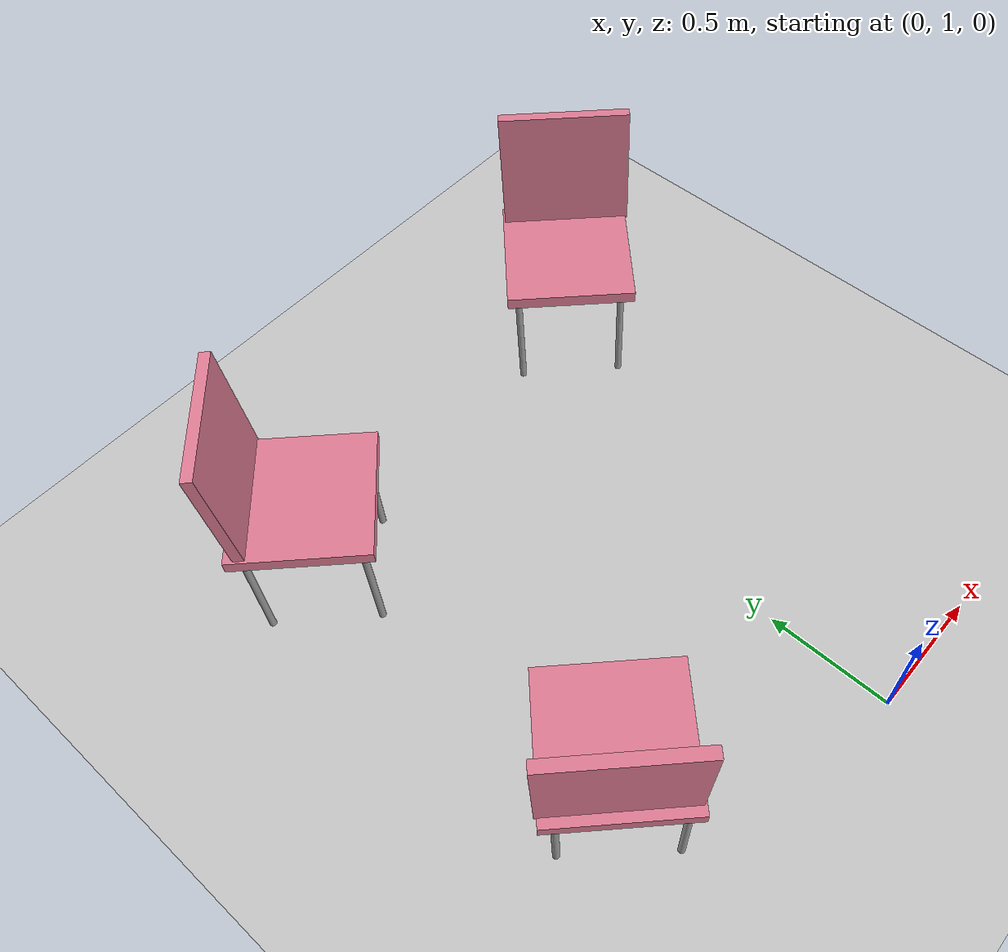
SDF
<sdf version="1.7">
 <world name="default">
  <model name="ground_plane">
   <static>1</static>
   <link name="link">
    <collision name="collision">
     <geometry><plane><normal>0 0 1</normal><size>100 100</size></plane></geometry>
     <surface>
      <contact><collide_bitmask>65535</collide_bitmask></contact>
      <friction><ode><mu>100</mu><mu2>50</mu2></ode></friction>
     </surface>
    </collision>
    <visual name="visual">
     <cast_shadows>0</cast_shadows>
     <geometry><plane><normal>0 0 1</normal><size>100 100</size></plane></geometry>
     <material>
      <script><uri>file://media/materials/scripts/gazebo.material</uri><name>Gazebo/Grey</name></script>
     </material>
    </visual>
   </link>
  </model>
  <model name="my_chair_0">
   <link name="link">
    <inertial>
     <mass>1</mass>
     <inertia>
      <ixx>0.166667</ixx>
      <ixy>0</ixy>
      <ixz>0</ixz>
      <iyy>0.166667</iyy>
      <iyz>0</iyz>
      <izz>0.166667</izz>
     </inertia>
    </inertial>
    <gravity>0</gravity>
    <visual name="visual">
     <geometry><box><size>0.5 0.5 0.05</size></box></geometry>
     <material>
      <script><name>Gazebo/Grey</name><uri>file://media/materials/scripts/gazebo.material</uri></script>
      <shader type="pixel"><normal_map>__default__</normal_map></shader>
      <ambient>0.9 0.5 0.6 1</ambient>
      <diffuse>0.9 0.5 0.6 1</diffuse>
      <specular>0.01 0.01 0.01 1</specular>
      <emissive>0 0 0 1</emissive>
     </material>
     <pose>0 0 0.5 0 -0 0</pose>
    </visual>
    <collision name="collision">
     <pose>0 0 0.5 0 -0 0</pose>
     <geometry><box><size>0.5 0.5 0.05</size></box></geometry>
     <surface>
      <friction>
       <ode><mu>1</mu><mu2>1</mu2><fdir1>0 0 0</fdir1><slip1>0</slip1><slip2>0</slip2></ode>
       <torsional>
        <coefficient>1</coefficient>
        <patch_radius>0</patch_radius>
        <surface_radius>0</surface_radius>
        <use_patch_radius>1</use_patch_radius>
        <ode><slip>0</slip></ode>
       </torsional>
      </friction>
      <bounce><restitution_coefficient>0</restitution_coefficient><threshold>1e+06</threshold></bounce>
      <contact>
       <collide_without_contact>0</collide_without_contact>
       <collide_without_contact_bitmask>1</collide_without_contact_bitmask>
       <collide_bitmask>1</collide_bitmask>
       <ode>
        <soft_cfm>0</soft_cfm>
        <soft_erp>0.2</soft_erp>
        <kp>1e+13</kp>
        <kd>1</kd>
        <max_vel>0.01</max_vel>
        <min_depth>0</min_depth>
       </ode>
       <bullet>
        <split_impulse>1</split_impulse>
        <split_impulse_penetration_threshold>-0.01</split_impulse_penetration_threshold>
        <soft_cfm>0</soft_cfm>
        <soft_erp>0.2</soft_erp>
        <kp>1e+13</kp>
        <kd>1</kd>
       </bullet>
      </contact>
     </surface>
    </collision>
   </link>
   <link name="link_0">
    <inertial>
     <mass>1</mass>
     <inertia><ixx>0.145833</ixx><ixy>0</ixy><ixz>0</ixz><iyy>0.145833</iyy><iyz>0</iyz><izz>0.125</izz></inertia>
    </inertial>
    <pose>-0.200315 -0.184767 -0.272701 -0 -0 -0</pose>
    <gravity>0</gravity>
    <visual name="visual">
     <pose>0 0 0.5 0 -0 0</pose>
     <geometry><cylinder><radius>0.013</radius><length>0.5</length></cylinder></geometry>
     <material>
      <lighting>1</lighting>
      <script><uri>file://media/materials/scripts/gazebo.material</uri><name>Gazebo/Grey</name></script>
      <shader type="pixel"><normal_map>__default__</normal_map></shader>
      <ambient>0.3 0.3 0.3 1</ambient>
      <diffuse>0.7 0.7 0.7 1</diffuse>
      <specular>0.01 0.01 0.01 1</specular>
      <emissive>0 0 0 1</emissive>
     </material>
    </visual>
    <collision name="collision">
     <pose>0 0 0.5 0 -0 0</pose>
     <geometry><cylinder><radius>0.013</radius><length>0.5</length></cylinder></geometry>
     <surface>
      <friction>
       <ode><mu>1</mu><mu2>1</mu2><fdir1>0 0 0</fdir1><slip1>0</slip1><slip2>0</slip2></ode>
       <torsional>
        <coefficient>1</coefficient>
        <patch_radius>0</patch_radius>
        <surface_radius>0</surface_radius>
        <use_patch_radius>1</use_patch_radius>
        <ode><slip>0</slip></ode>
       </torsional>
      </friction>
      <bounce><restitution_coefficient>0</restitution_coefficient><threshold>1e+06</threshold></bounce>
      <contact>
       <collide_without_contact>0</collide_without_contact>
       <collide_without_contact_bitmask>1</collide_without_contact_bitmask>
       <collide_bitmask>1</collide_bitmask>
       <ode>
        <soft_cfm>0</soft_cfm>
        <soft_erp>0.2</soft_erp>
        <kp>1e+13</kp>
        <kd>1</kd>
        <max_vel>0.01</max_vel>
        <min_depth>0</min_depth>
       </ode>
       <bullet>
        <split_impulse>1</split_impulse>
        <split_impulse_penetration_threshold>-0.01</split_impulse_penetration_threshold>
        <soft_cfm>0</soft_cfm>
        <soft_erp>0.2</soft_erp>
        <kp>1e+13</kp>
        <kd>1</kd>
       </bullet>
      </contact>
     </surface>
    </collision>
   </link>
   <link name="link_0_clone">
    <inertial>
     <mass>1</mass>
     <inertia><ixx>0.145833</ixx><ixy>0</ixy><ixz>0</ixz><iyy>0.145833</iyy><iyz>0</iyz><izz>0.125</izz></inertia>
    </inertial>
    <pose>-0.198839 0.194466 -0.272701 -0 -0 -0</pose>
    <gravity>0</gravity>
    <visual name="visual">
     <pose>0 0 0.5 0 -0 0</pose>
     <geometry><cylinder><radius>0.013</radius><length>0.5</length></cylinder></geometry>
     <material>
      <lighting>1</lighting>
      <script><uri>file://media/materials/scripts/gazebo.material</uri><name>Gazebo/Grey</name></script>
      <shader type="pixel"><normal_map>__default__</normal_map></shader>
      <ambient>0.3 0.3 0.3 1</ambient>
      <diffuse>0.7 0.7 0.7 1</diffuse>
      <specular>0.01 0.01 0.01 1</specular>
      <emissive>0 0 0 1</emissive>
     </material>
    </visual>
    <collision name="collision">
     <pose>0 0 0.5 0 -0 0</pose>
     <geometry><cylinder><radius>0.013</radius><length>0.5</length></cylinder></geometry>
     <surface>
      <friction>
       <ode><mu>1</mu><mu2>1</mu2><fdir1>0 0 0</fdir1><slip1>0</slip1><slip2>0</slip2></ode>
       <torsional>
        <coefficient>1</coefficient>
        <patch_radius>0</patch_radius>
        <surface_radius>0</surface_radius>
        <use_patch_radius>1</use_patch_radius>
        <ode><slip>0</slip></ode>
       </torsional>
      </friction>
      <bounce><restitution_coefficient>0</restitution_coefficient><threshold>1e+06</threshold></bounce>
      <contact>
       <collide_without_contact>0</collide_without_contact>
       <collide_without_contact_bitmask>1</collide_without_contact_bitmask>
       <collide_bitmask>1</collide_bitmask>
       <ode>
        <soft_cfm>0</soft_cfm>
        <soft_erp>0.2</soft_erp>
        <kp>1e+13</kp>
        <kd>1</kd>
        <max_vel>0.01</max_vel>
        <min_depth>0</min_depth>
       </ode>
       <bullet>
        <split_impulse>1</split_impulse>
        <split_impulse_penetration_threshold>-0.01</split_impulse_penetration_threshold>
        <soft_cfm>0</soft_cfm>
        <soft_erp>0.2</soft_erp>
        <kp>1e+13</kp>
        <kd>1</kd>
       </bullet>
      </contact>
     </surface>
    </collision>
   </link>
   <link name="link_0_clone_0">
    <inertial>
     <mass>1</mass>
     <inertia><ixx>0.145833</ixx><ixy>0</ixy><ixz>0</ixz><iyy>0.145833</iyy><iyz>0</iyz><izz>0.125</izz></inertia>
    </inertial>
    <pose>0.211914 -0.198881 -0.272701 -0 -0 -0</pose>
    <gravity>0</gravity>
    <visual name="visual">
     <pose>0 0 0.5 0 -0 0</pose>
     <geometry><cylinder><radius>0.013</radius><length>0.5</length></cylinder></geometry>
     <material>
      <lighting>1</lighting>
      <script><uri>file://media/materials/scripts/gazebo.material</uri><name>Gazebo/Grey</name></script>
      <shader type="pixel"><normal_map>__default__</normal_map></shader>
      <ambient>0.3 0.3 0.3 1</ambient>
      <diffuse>0.7 0.7 0.7 1</diffuse>
      <specular>0.01 0.01 0.01 1</specular>
      <emissive>0 0 0 1</emissive>
     </material>
    </visual>
    <collision name="collision">
     <pose>0 0 0.5 0 -0 0</pose>
     <geometry><cylinder><radius>0.013</radius><length>0.5</length></cylinder></geometry>
     <surface>
      <friction>
       <ode><mu>1</mu><mu2>1</mu2><fdir1>0 0 0</fdir1><slip1>0</slip1><slip2>0</slip2></ode>
       <torsional>
        <coefficient>1</coefficient>
        <patch_radius>0</patch_radius>
        <surface_radius>0</surface_radius>
        <use_patch_radius>1</use_patch_radius>
        <ode><slip>0</slip></ode>
       </torsional>
      </friction>
      <bounce><restitution_coefficient>0</restitution_coefficient><threshold>1e+06</threshold></bounce>
      <contact>
       <collide_without_contact>0</collide_without_contact>
       <collide_without_contact_bitmask>1</collide_without_contact_bitmask>
       <collide_bitmask>1</collide_bitmask>
       <ode>
        <soft_cfm>0</soft_cfm>
        <soft_erp>0.2</soft_erp>
        <kp>1e+13</kp>
        <kd>1</kd>
        <max_vel>0.01</max_vel>
        <min_depth>0</min_depth>
       </ode>
       <bullet>
        <split_impulse>1</split_impulse>
        <split_impulse_penetration_threshold>-0.01</split_impulse_penetration_threshold>
        <soft_cfm>0</soft_cfm>
        <soft_erp>0.2</soft_erp>
        <kp>1e+13</kp>
        <kd>1</kd>
       </bullet>
      </contact>
     </surface>
    </collision>
   </link>
   <link name="link_0_clone_1">
    <inertial>
     <mass>1</mass>
     <inertia><ixx>0.145833</ixx><ixy>0</ixy><ixz>0</ixz><iyy>0.145833</iyy><iyz>0</iyz><izz>0.125</izz></inertia>
    </inertial>
    <pose>0.207422 0.203987 -0.272701 -0 -0 -0</pose>
    <gravity>0</gravity>
    <visual name="visual">
     <pose>0 0 0.5 0 -0 0</pose>
     <geometry><cylinder><radius>0.013</radius><length>0.5</length></cylinder></geometry>
     <material>
      <lighting>1</lighting>
      <script><uri>file://media/materials/scripts/gazebo.material</uri><name>Gazebo/Grey</name></script>
      <shader type="pixel"><normal_map>__default__</normal_map></shader>
      <ambient>0.3 0.3 0.3 1</ambient>
      <diffuse>0.7 0.7 0.7 1</diffuse>
      <specular>0.01 0.01 0.01 1</specular>
      <emissive>0 0 0 1</emissive>
     </material>
    </visual>
    <collision name="collision">
     <pose>0 0 0.5 0 -0 0</pose>
     <geometry><cylinder><radius>0.013</radius><length>0.5</length></cylinder></geometry>
     <surface>
      <friction>
       <ode><mu>1</mu><mu2>1</mu2><fdir1>0 0 0</fdir1><slip1>0</slip1><slip2>0</slip2></ode>
       <torsional>
        <coefficient>1</coefficient>
        <patch_radius>0</patch_radius>
        <surface_radius>0</surface_radius>
        <use_patch_radius>1</use_patch_radius>
        <ode><slip>0</slip></ode>
       </torsional>
      </friction>
      <bounce><restitution_coefficient>0</restitution_coefficient><threshold>1e+06</threshold></bounce>
      <contact>
       <collide_without_contact>0</collide_without_contact>
       <collide_without_contact_bitmask>1</collide_without_contact_bitmask>
       <collide_bitmask>1</collide_bitmask>
       <ode>
        <soft_cfm>0</soft_cfm>
        <soft_erp>0.2</soft_erp>
        <kp>1e+13</kp>
        <kd>1</kd>
        <max_vel>0.01</max_vel>
        <min_depth>0</min_depth>
       </ode>
       <bullet>
        <split_impulse>1</split_impulse>
        <split_impulse_penetration_threshold>-0.01</split_impulse_penetration_threshold>
        <soft_cfm>0</soft_cfm>
        <soft_erp>0.2</soft_erp>
        <kp>1e+13</kp>
        <kd>1</kd>
       </bullet>
      </contact>
     </surface>
    </collision>
   </link>
   <link name="link_clone">
    <inertial>
     <mass>1</mass>
     <inertia>
      <ixx>0.166667</ixx>
      <ixy>0</ixy>
      <ixz>0</ixz>
      <iyy>0.166667</iyy>
      <iyz>0</iyz>
      <izz>0.166667</izz>
     </inertia>
    </inertial>
    <pose>-0.00806 -0.212496 0.264135 -0 -0 -0</pose>
    <gravity>0</gravity>
    <visual name="visual">
     <geometry><box><size>0.5 0.5 0.04</size></box></geometry>
     <material>
      <script><name>Gazebo/Grey</name><uri>file://media/materials/scripts/gazebo.material</uri></script>
      <shader type="pixel"><normal_map>__default__</normal_map></shader>
      <ambient>0.9 0.5 0.6 1</ambient>
      <diffuse>0.9 0.5 0.6 1</diffuse>
      <specular>0.01 0.01 0.01 1</specular>
      <emissive>0 0 0 1</emissive>
     </material>
     <pose>0 0 0.5 -1.5 0 0</pose>
    </visual>
    <collision name="collision">
     <pose>0 0 0.5 -1.5 0 0</pose>
     <geometry><box><size>0.5 0.5 0.04</size></box></geometry>
     <surface>
      <friction>
       <ode><mu>1</mu><mu2>1</mu2><fdir1>0 0 0</fdir1><slip1>0</slip1><slip2>0</slip2></ode>
       <torsional>
        <coefficient>1</coefficient>
        <patch_radius>0</patch_radius>
        <surface_radius>0</surface_radius>
        <use_patch_radius>1</use_patch_radius>
        <ode><slip>0</slip></ode>
       </torsional>
      </friction>
      <bounce><restitution_coefficient>0</restitution_coefficient><threshold>1e+06</threshold></bounce>
      <contact>
       <collide_without_contact>0</collide_without_contact>
       <collide_without_contact_bitmask>1</collide_without_contact_bitmask>
       <collide_bitmask>1</collide_bitmask>
       <ode>
        <soft_cfm>0</soft_cfm>
        <soft_erp>0.2</soft_erp>
        <kp>1e+13</kp>
        <kd>1</kd>
        <max_vel>0.01</max_vel>
        <min_depth>0</min_depth>
       </ode>
       <bullet>
        <split_impulse>1</split_impulse>
        <split_impulse_penetration_threshold>-0.01</split_impulse_penetration_threshold>
        <soft_cfm>0</soft_cfm>
        <soft_erp>0.2</soft_erp>
        <kp>1e+13</kp>
        <kd>1</kd>
       </bullet>
      </contact>
     </surface>
    </collision>
   </link>
   <static>1</static>
   <pose>-0.880612 1.53753 0 0 0 -0.785298</pose>
  </model>
  <model name="my_chair_1">
   <link name="link">
    <inertial>
     <mass>1</mass>
     <inertia>
      <ixx>0.166667</ixx>
      <ixy>0</ixy>
      <ixz>0</ixz>
      <iyy>0.166667</iyy>
      <iyz>0</iyz>
      <izz>0.166667</izz>
     </inertia>
    </inertial>
    <gravity>0</gravity>
    <visual name="visual">
     <geometry><box><size>0.5 0.5 0.05</size></box></geometry>
     <material>
      <script><name>Gazebo/Grey</name><uri>file://media/materials/scripts/gazebo.material</uri></script>
      <shader type="pixel"><normal_map>__default__</normal_map></shader>
      <ambient>0.9 0.5 0.6 1</ambient>
      <diffuse>0.9 0.5 0.6 1</diffuse>
      <specular>0.01 0.01 0.01 1</specular>
      <emissive>0 0 0 1</emissive>
     </material>
     <pose>0 0 0.5 0 -0 0</pose>
    </visual>
    <collision name="collision">
     <pose>0 0 0.5 0 -0 0</pose>
     <geometry><box><size>0.5 0.5 0.05</size></box></geometry>
     <surface>
      <friction>
       <ode><mu>1</mu><mu2>1</mu2><fdir1>0 0 0</fdir1><slip1>0</slip1><slip2>0</slip2></ode>
       <torsional>
        <coefficient>1</coefficient>
        <patch_radius>0</patch_radius>
        <surface_radius>0</surface_radius>
        <use_patch_radius>1</use_patch_radius>
        <ode><slip>0</slip></ode>
       </torsional>
      </friction>
      <bounce><restitution_coefficient>0</restitution_coefficient><threshold>1e+06</threshold></bounce>
      <contact>
       <collide_without_contact>0</collide_without_contact>
       <collide_without_contact_bitmask>1</collide_without_contact_bitmask>
       <collide_bitmask>1</collide_bitmask>
       <ode>
        <soft_cfm>0</soft_cfm>
        <soft_erp>0.2</soft_erp>
        <kp>1e+13</kp>
        <kd>1</kd>
        <max_vel>0.01</max_vel>
        <min_depth>0</min_depth>
       </ode>
       <bullet>
        <split_impulse>1</split_impulse>
        <split_impulse_penetration_threshold>-0.01</split_impulse_penetration_threshold>
        <soft_cfm>0</soft_cfm>
        <soft_erp>0.2</soft_erp>
        <kp>1e+13</kp>
        <kd>1</kd>
       </bullet>
      </contact>
     </surface>
    </collision>
   </link>
   <link name="link_0">
    <inertial>
     <mass>1</mass>
     <inertia><ixx>0.145833</ixx><ixy>0</ixy><ixz>0</ixz><iyy>0.145833</iyy><iyz>0</iyz><izz>0.125</izz></inertia>
    </inertial>
    <pose>-0.200315 -0.184767 -0.272701 -0 -0 -0</pose>
    <gravity>0</gravity>
    <visual name="visual">
     <pose>0 0 0.5 0 -0 0</pose>
     <geometry><cylinder><radius>0.013</radius><length>0.5</length></cylinder></geometry>
     <material>
      <lighting>1</lighting>
      <script><uri>file://media/materials/scripts/gazebo.material</uri><name>Gazebo/Grey</name></script>
      <shader type="pixel"><normal_map>__default__</normal_map></shader>
      <ambient>0.3 0.3 0.3 1</ambient>
      <diffuse>0.7 0.7 0.7 1</diffuse>
      <specular>0.01 0.01 0.01 1</specular>
      <emissive>0 0 0 1</emissive>
     </material>
    </visual>
    <collision name="collision">
     <pose>0 0 0.5 0 -0 0</pose>
     <geometry><cylinder><radius>0.013</radius><length>0.5</length></cylinder></geometry>
     <surface>
      <friction>
       <ode><mu>1</mu><mu2>1</mu2><fdir1>0 0 0</fdir1><slip1>0</slip1><slip2>0</slip2></ode>
       <torsional>
        <coefficient>1</coefficient>
        <patch_radius>0</patch_radius>
        <surface_radius>0</surface_radius>
        <use_patch_radius>1</use_patch_radius>
        <ode><slip>0</slip></ode>
       </torsional>
      </friction>
      <bounce><restitution_coefficient>0</restitution_coefficient><threshold>1e+06</threshold></bounce>
      <contact>
       <collide_without_contact>0</collide_without_contact>
       <collide_without_contact_bitmask>1</collide_without_contact_bitmask>
       <collide_bitmask>1</collide_bitmask>
       <ode>
        <soft_cfm>0</soft_cfm>
        <soft_erp>0.2</soft_erp>
        <kp>1e+13</kp>
        <kd>1</kd>
        <max_vel>0.01</max_vel>
        <min_depth>0</min_depth>
       </ode>
       <bullet>
        <split_impulse>1</split_impulse>
        <split_impulse_penetration_threshold>-0.01</split_impulse_penetration_threshold>
        <soft_cfm>0</soft_cfm>
        <soft_erp>0.2</soft_erp>
        <kp>1e+13</kp>
        <kd>1</kd>
       </bullet>
      </contact>
     </surface>
    </collision>
   </link>
   <link name="link_0_clone">
    <inertial>
     <mass>1</mass>
     <inertia><ixx>0.145833</ixx><ixy>0</ixy><ixz>0</ixz><iyy>0.145833</iyy><iyz>0</iyz><izz>0.125</izz></inertia>
    </inertial>
    <pose>-0.198839 0.194466 -0.272701 -0 -0 -0</pose>
    <gravity>0</gravity>
    <visual name="visual">
     <pose>0 0 0.5 0 -0 0</pose>
     <geometry><cylinder><radius>0.013</radius><length>0.5</length></cylinder></geometry>
     <material>
      <lighting>1</lighting>
      <script><uri>file://media/materials/scripts/gazebo.material</uri><name>Gazebo/Grey</name></script>
      <shader type="pixel"><normal_map>__default__</normal_map></shader>
      <ambient>0.3 0.3 0.3 1</ambient>
      <diffuse>0.7 0.7 0.7 1</diffuse>
      <specular>0.01 0.01 0.01 1</specular>
      <emissive>0 0 0 1</emissive>
     </material>
    </visual>
    <collision name="collision">
     <pose>0 0 0.5 0 -0 0</pose>
     <geometry><cylinder><radius>0.013</radius><length>0.5</length></cylinder></geometry>
     <surface>
      <friction>
       <ode><mu>1</mu><mu2>1</mu2><fdir1>0 0 0</fdir1><slip1>0</slip1><slip2>0</slip2></ode>
       <torsional>
        <coefficient>1</coefficient>
        <patch_radius>0</patch_radius>
        <surface_radius>0</surface_radius>
        <use_patch_radius>1</use_patch_radius>
        <ode><slip>0</slip></ode>
       </torsional>
      </friction>
      <bounce><restitution_coefficient>0</restitution_coefficient><threshold>1e+06</threshold></bounce>
      <contact>
       <collide_without_contact>0</collide_without_contact>
       <collide_without_contact_bitmask>1</collide_without_contact_bitmask>
       <collide_bitmask>1</collide_bitmask>
       <ode>
        <soft_cfm>0</soft_cfm>
        <soft_erp>0.2</soft_erp>
        <kp>1e+13</kp>
        <kd>1</kd>
        <max_vel>0.01</max_vel>
        <min_depth>0</min_depth>
       </ode>
       <bullet>
        <split_impulse>1</split_impulse>
        <split_impulse_penetration_threshold>-0.01</split_impulse_penetration_threshold>
        <soft_cfm>0</soft_cfm>
        <soft_erp>0.2</soft_erp>
        <kp>1e+13</kp>
        <kd>1</kd>
       </bullet>
      </contact>
     </surface>
    </collision>
   </link>
   <link name="link_0_clone_0">
    <inertial>
     <mass>1</mass>
     <inertia><ixx>0.145833</ixx><ixy>0</ixy><ixz>0</ixz><iyy>0.145833</iyy><iyz>0</iyz><izz>0.125</izz></inertia>
    </inertial>
    <pose>0.211914 -0.198881 -0.272701 -0 -0 -0</pose>
    <gravity>0</gravity>
    <visual name="visual">
     <pose>0 0 0.5 0 -0 0</pose>
     <geometry><cylinder><radius>0.013</radius><length>0.5</length></cylinder></geometry>
     <material>
      <lighting>1</lighting>
      <script><uri>file://media/materials/scripts/gazebo.material</uri><name>Gazebo/Grey</name></script>
      <shader type="pixel"><normal_map>__default__</normal_map></shader>
      <ambient>0.3 0.3 0.3 1</ambient>
      <diffuse>0.7 0.7 0.7 1</diffuse>
      <specular>0.01 0.01 0.01 1</specular>
      <emissive>0 0 0 1</emissive>
     </material>
    </visual>
    <collision name="collision">
     <pose>0 0 0.5 0 -0 0</pose>
     <geometry><cylinder><radius>0.013</radius><length>0.5</length></cylinder></geometry>
     <surface>
      <friction>
       <ode><mu>1</mu><mu2>1</mu2><fdir1>0 0 0</fdir1><slip1>0</slip1><slip2>0</slip2></ode>
       <torsional>
        <coefficient>1</coefficient>
        <patch_radius>0</patch_radius>
        <surface_radius>0</surface_radius>
        <use_patch_radius>1</use_patch_radius>
        <ode><slip>0</slip></ode>
       </torsional>
      </friction>
      <bounce><restitution_coefficient>0</restitution_coefficient><threshold>1e+06</threshold></bounce>
      <contact>
       <collide_without_contact>0</collide_without_contact>
       <collide_without_contact_bitmask>1</collide_without_contact_bitmask>
       <collide_bitmask>1</collide_bitmask>
       <ode>
        <soft_cfm>0</soft_cfm>
        <soft_erp>0.2</soft_erp>
        <kp>1e+13</kp>
        <kd>1</kd>
        <max_vel>0.01</max_vel>
        <min_depth>0</min_depth>
       </ode>
       <bullet>
        <split_impulse>1</split_impulse>
        <split_impulse_penetration_threshold>-0.01</split_impulse_penetration_threshold>
        <soft_cfm>0</soft_cfm>
        <soft_erp>0.2</soft_erp>
        <kp>1e+13</kp>
        <kd>1</kd>
       </bullet>
      </contact>
     </surface>
    </collision>
   </link>
   <link name="link_0_clone_1">
    <inertial>
     <mass>1</mass>
     <inertia><ixx>0.145833</ixx><ixy>0</ixy><ixz>0</ixz><iyy>0.145833</iyy><iyz>0</iyz><izz>0.125</izz></inertia>
    </inertial>
    <pose>0.207422 0.203987 -0.272701 -0 -0 -0</pose>
    <gravity>0</gravity>
    <visual name="visual">
     <pose>0 0 0.5 0 -0 0</pose>
     <geometry><cylinder><radius>0.013</radius><length>0.5</length></cylinder></geometry>
     <material>
      <lighting>1</lighting>
      <script><uri>file://media/materials/scripts/gazebo.material</uri><name>Gazebo/Grey</name></script>
      <shader type="pixel"><normal_map>__default__</normal_map></shader>
      <ambient>0.3 0.3 0.3 1</ambient>
      <diffuse>0.7 0.7 0.7 1</diffuse>
      <specular>0.01 0.01 0.01 1</specular>
      <emissive>0 0 0 1</emissive>
     </material>
    </visual>
    <collision name="collision">
     <pose>0 0 0.5 0 -0 0</pose>
     <geometry><cylinder><radius>0.013</radius><length>0.5</length></cylinder></geometry>
     <surface>
      <friction>
       <ode><mu>1</mu><mu2>1</mu2><fdir1>0 0 0</fdir1><slip1>0</slip1><slip2>0</slip2></ode>
       <torsional>
        <coefficient>1</coefficient>
        <patch_radius>0</patch_radius>
        <surface_radius>0</surface_radius>
        <use_patch_radius>1</use_patch_radius>
        <ode><slip>0</slip></ode>
       </torsional>
      </friction>
      <bounce><restitution_coefficient>0</restitution_coefficient><threshold>1e+06</threshold></bounce>
      <contact>
       <collide_without_contact>0</collide_without_contact>
       <collide_without_contact_bitmask>1</collide_without_contact_bitmask>
       <collide_bitmask>1</collide_bitmask>
       <ode>
        <soft_cfm>0</soft_cfm>
        <soft_erp>0.2</soft_erp>
        <kp>1e+13</kp>
        <kd>1</kd>
        <max_vel>0.01</max_vel>
        <min_depth>0</min_depth>
       </ode>
       <bullet>
        <split_impulse>1</split_impulse>
        <split_impulse_penetration_threshold>-0.01</split_impulse_penetration_threshold>
        <soft_cfm>0</soft_cfm>
        <soft_erp>0.2</soft_erp>
        <kp>1e+13</kp>
        <kd>1</kd>
       </bullet>
      </contact>
     </surface>
    </collision>
   </link>
   <link name="link_clone">
    <inertial>
     <mass>1</mass>
     <inertia>
      <ixx>0.166667</ixx>
      <ixy>0</ixy>
      <ixz>0</ixz>
      <iyy>0.166667</iyy>
      <iyz>0</iyz>
      <izz>0.166667</izz>
     </inertia>
    </inertial>
    <pose>-0.00806 -0.212496 0.264135 -0 -0 -0</pose>
    <gravity>0</gravity>
    <visual name="visual">
     <geometry><box><size>0.5 0.5 0.04</size></box></geometry>
     <material>
      <script><name>Gazebo/Grey</name><uri>file://media/materials/scripts/gazebo.material</uri></script>
      <shader type="pixel"><normal_map>__default__</normal_map></shader>
      <ambient>0.9 0.5 0.6 1</ambient>
      <diffuse>0.9 0.5 0.6 1</diffuse>
      <specular>0.01 0.01 0.01 1</specular>
      <emissive>0 0 0 1</emissive>
     </material>
     <pose>0 0 0.5 -1.5 0 0</pose>
    </visual>
    <collision name="collision">
     <pose>0 0 0.5 -1.5 0 0</pose>
     <geometry><box><size>0.5 0.5 0.04</size></box></geometry>
     <surface>
      <friction>
       <ode><mu>1</mu><mu2>1</mu2><fdir1>0 0 0</fdir1><slip1>0</slip1><slip2>0</slip2></ode>
       <torsional>
        <coefficient>1</coefficient>
        <patch_radius>0</patch_radius>
        <surface_radius>0</surface_radius>
        <use_patch_radius>1</use_patch_radius>
        <ode><slip>0</slip></ode>
       </torsional>
      </friction>
      <bounce><restitution_coefficient>0</restitution_coefficient><threshold>1e+06</threshold></bounce>
      <contact>
       <collide_without_contact>0</collide_without_contact>
       <collide_without_contact_bitmask>1</collide_without_contact_bitmask>
       <collide_bitmask>1</collide_bitmask>
       <ode>
        <soft_cfm>0</soft_cfm>
        <soft_erp>0.2</soft_erp>
        <kp>1e+13</kp>
        <kd>1</kd>
        <max_vel>0.01</max_vel>
        <min_depth>0</min_depth>
       </ode>
       <bullet>
        <split_impulse>1</split_impulse>
        <split_impulse_penetration_threshold>-0.01</split_impulse_penetration_threshold>
        <soft_cfm>0</soft_cfm>
        <soft_erp>0.2</soft_erp>
        <kp>1e+13</kp>
        <kd>1</kd>
       </bullet>
      </contact>
     </surface>
    </collision>
   </link>
   <static>1</static>
   <pose>0.547385 2.97428 0 0 -0 2.35589</pose>
  </model>
  <model name="my_chair_2">
   <link name="link">
    <inertial>
     <mass>1</mass>
     <inertia>
      <ixx>0.166667</ixx>
      <ixy>0</ixy>
      <ixz>0</ixz>
      <iyy>0.166667</iyy>
      <iyz>0</iyz>
      <izz>0.166667</izz>
     </inertia>
    </inertial>
    <gravity>0</gravity>
    <visual name="visual">
     <geometry><box><size>0.5 0.5 0.05</size></box></geometry>
     <material>
      <script><name>Gazebo/Grey</name><uri>file://media/materials/scripts/gazebo.material</uri></script>
      <shader type="pixel"><normal_map>__default__</normal_map></shader>
      <ambient>0.9 0.5 0.6 1</ambient>
      <diffuse>0.9 0.5 0.6 1</diffuse>
      <specular>0.01 0.01 0.01 1</specular>
      <emissive>0 0 0 1</emissive>
     </material>
     <pose>0 0 0.5 0 -0 0</pose>
    </visual>
    <collision name="collision">
     <pose>0 0 0.5 0 -0 0</pose>
     <geometry><box><size>0.5 0.5 0.05</size></box></geometry>
     <surface>
      <friction>
       <ode><mu>1</mu><mu2>1</mu2><fdir1>0 0 0</fdir1><slip1>0</slip1><slip2>0</slip2></ode>
       <torsional>
        <coefficient>1</coefficient>
        <patch_radius>0</patch_radius>
        <surface_radius>0</surface_radius>
        <use_patch_radius>1</use_patch_radius>
        <ode><slip>0</slip></ode>
       </torsional>
      </friction>
      <bounce><restitution_coefficient>0</restitution_coefficient><threshold>1e+06</threshold></bounce>
      <contact>
       <collide_without_contact>0</collide_without_contact>
       <collide_without_contact_bitmask>1</collide_without_contact_bitmask>
       <collide_bitmask>1</collide_bitmask>
       <ode>
        <soft_cfm>0</soft_cfm>
        <soft_erp>0.2</soft_erp>
        <kp>1e+13</kp>
        <kd>1</kd>
        <max_vel>0.01</max_vel>
        <min_depth>0</min_depth>
       </ode>
       <bullet>
        <split_impulse>1</split_impulse>
        <split_impulse_penetration_threshold>-0.01</split_impulse_penetration_threshold>
        <soft_cfm>0</soft_cfm>
        <soft_erp>0.2</soft_erp>
        <kp>1e+13</kp>
        <kd>1</kd>
       </bullet>
      </contact>
     </surface>
    </collision>
   </link>
   <link name="link_0">
    <inertial>
     <mass>1</mass>
     <inertia><ixx>0.145833</ixx><ixy>0</ixy><ixz>0</ixz><iyy>0.145833</iyy><iyz>0</iyz><izz>0.125</izz></inertia>
    </inertial>
    <pose>-0.200315 -0.184767 -0.272701 -0 -0 -0</pose>
    <gravity>0</gravity>
    <visual name="visual">
     <pose>0 0 0.5 0 -0 0</pose>
     <geometry><cylinder><radius>0.013</radius><length>0.5</length></cylinder></geometry>
     <material>
      <lighting>1</lighting>
      <script><uri>file://media/materials/scripts/gazebo.material</uri><name>Gazebo/Grey</name></script>
      <shader type="pixel"><normal_map>__default__</normal_map></shader>
      <ambient>0.3 0.3 0.3 1</ambient>
      <diffuse>0.7 0.7 0.7 1</diffuse>
      <specular>0.01 0.01 0.01 1</specular>
      <emissive>0 0 0 1</emissive>
     </material>
    </visual>
    <collision name="collision">
     <pose>0 0 0.5 0 -0 0</pose>
     <geometry><cylinder><radius>0.013</radius><length>0.5</length></cylinder></geometry>
     <surface>
      <friction>
       <ode><mu>1</mu><mu2>1</mu2><fdir1>0 0 0</fdir1><slip1>0</slip1><slip2>0</slip2></ode>
       <torsional>
        <coefficient>1</coefficient>
        <patch_radius>0</patch_radius>
        <surface_radius>0</surface_radius>
        <use_patch_radius>1</use_patch_radius>
        <ode><slip>0</slip></ode>
       </torsional>
      </friction>
      <bounce><restitution_coefficient>0</restitution_coefficient><threshold>1e+06</threshold></bounce>
      <contact>
       <collide_without_contact>0</collide_without_contact>
       <collide_without_contact_bitmask>1</collide_without_contact_bitmask>
       <collide_bitmask>1</collide_bitmask>
       <ode>
        <soft_cfm>0</soft_cfm>
        <soft_erp>0.2</soft_erp>
        <kp>1e+13</kp>
        <kd>1</kd>
        <max_vel>0.01</max_vel>
        <min_depth>0</min_depth>
       </ode>
       <bullet>
        <split_impulse>1</split_impulse>
        <split_impulse_penetration_threshold>-0.01</split_impulse_penetration_threshold>
        <soft_cfm>0</soft_cfm>
        <soft_erp>0.2</soft_erp>
        <kp>1e+13</kp>
        <kd>1</kd>
       </bullet>
      </contact>
     </surface>
    </collision>
   </link>
   <link name="link_0_clone">
    <inertial>
     <mass>1</mass>
     <inertia><ixx>0.145833</ixx><ixy>0</ixy><ixz>0</ixz><iyy>0.145833</iyy><iyz>0</iyz><izz>0.125</izz></inertia>
    </inertial>
    <pose>-0.198839 0.194466 -0.272701 -0 -0 -0</pose>
    <gravity>0</gravity>
    <visual name="visual">
     <pose>0 0 0.5 0 -0 0</pose>
     <geometry><cylinder><radius>0.013</radius><length>0.5</length></cylinder></geometry>
     <material>
      <lighting>1</lighting>
      <script><uri>file://media/materials/scripts/gazebo.material</uri><name>Gazebo/Grey</name></script>
      <shader type="pixel"><normal_map>__default__</normal_map></shader>
      <ambient>0.3 0.3 0.3 1</ambient>
      <diffuse>0.7 0.7 0.7 1</diffuse>
      <specular>0.01 0.01 0.01 1</specular>
      <emissive>0 0 0 1</emissive>
     </material>
    </visual>
    <collision name="collision">
     <pose>0 0 0.5 0 -0 0</pose>
     <geometry><cylinder><radius>0.013</radius><length>0.5</length></cylinder></geometry>
     <surface>
      <friction>
       <ode><mu>1</mu><mu2>1</mu2><fdir1>0 0 0</fdir1><slip1>0</slip1><slip2>0</slip2></ode>
       <torsional>
        <coefficient>1</coefficient>
        <patch_radius>0</patch_radius>
        <surface_radius>0</surface_radius>
        <use_patch_radius>1</use_patch_radius>
        <ode><slip>0</slip></ode>
       </torsional>
      </friction>
      <bounce><restitution_coefficient>0</restitution_coefficient><threshold>1e+06</threshold></bounce>
      <contact>
       <collide_without_contact>0</collide_without_contact>
       <collide_without_contact_bitmask>1</collide_without_contact_bitmask>
       <collide_bitmask>1</collide_bitmask>
       <ode>
        <soft_cfm>0</soft_cfm>
        <soft_erp>0.2</soft_erp>
        <kp>1e+13</kp>
        <kd>1</kd>
        <max_vel>0.01</max_vel>
        <min_depth>0</min_depth>
       </ode>
       <bullet>
        <split_impulse>1</split_impulse>
        <split_impulse_penetration_threshold>-0.01</split_impulse_penetration_threshold>
        <soft_cfm>0</soft_cfm>
        <soft_erp>0.2</soft_erp>
        <kp>1e+13</kp>
        <kd>1</kd>
       </bullet>
      </contact>
     </surface>
    </collision>
   </link>
   <link name="link_0_clone_0">
    <inertial>
     <mass>1</mass>
     <inertia><ixx>0.145833</ixx><ixy>0</ixy><ixz>0</ixz><iyy>0.145833</iyy><iyz>0</iyz><izz>0.125</izz></inertia>
    </inertial>
    <pose>0.211914 -0.198881 -0.272701 -0 -0 -0</pose>
    <gravity>0</gravity>
    <visual name="visual">
     <pose>0 0 0.5 0 -0 0</pose>
     <geometry><cylinder><radius>0.013</radius><length>0.5</length></cylinder></geometry>
     <material>
      <lighting>1</lighting>
      <script><uri>file://media/materials/scripts/gazebo.material</uri><name>Gazebo/Grey</name></script>
      <shader type="pixel"><normal_map>__default__</normal_map></shader>
      <ambient>0.3 0.3 0.3 1</ambient>
      <diffuse>0.7 0.7 0.7 1</diffuse>
      <specular>0.01 0.01 0.01 1</specular>
      <emissive>0 0 0 1</emissive>
     </material>
    </visual>
    <collision name="collision">
     <pose>0 0 0.5 0 -0 0</pose>
     <geometry><cylinder><radius>0.013</radius><length>0.5</length></cylinder></geometry>
     <surface>
      <friction>
       <ode><mu>1</mu><mu2>1</mu2><fdir1>0 0 0</fdir1><slip1>0</slip1><slip2>0</slip2></ode>
       <torsional>
        <coefficient>1</coefficient>
        <patch_radius>0</patch_radius>
        <surface_radius>0</surface_radius>
        <use_patch_radius>1</use_patch_radius>
        <ode><slip>0</slip></ode>
       </torsional>
      </friction>
      <bounce><restitution_coefficient>0</restitution_coefficient><threshold>1e+06</threshold></bounce>
      <contact>
       <collide_without_contact>0</collide_without_contact>
       <collide_without_contact_bitmask>1</collide_without_contact_bitmask>
       <collide_bitmask>1</collide_bitmask>
       <ode>
        <soft_cfm>0</soft_cfm>
        <soft_erp>0.2</soft_erp>
        <kp>1e+13</kp>
        <kd>1</kd>
        <max_vel>0.01</max_vel>
        <min_depth>0</min_depth>
       </ode>
       <bullet>
        <split_impulse>1</split_impulse>
        <split_impulse_penetration_threshold>-0.01</split_impulse_penetration_threshold>
        <soft_cfm>0</soft_cfm>
        <soft_erp>0.2</soft_erp>
        <kp>1e+13</kp>
        <kd>1</kd>
       </bullet>
      </contact>
     </surface>
    </collision>
   </link>
   <link name="link_0_clone_1">
    <inertial>
     <mass>1</mass>
     <inertia><ixx>0.145833</ixx><ixy>0</ixy><ixz>0</ixz><iyy>0.145833</iyy><iyz>0</iyz><izz>0.125</izz></inertia>
    </inertial>
    <pose>0.207422 0.203987 -0.272701 -0 -0 -0</pose>
    <gravity>0</gravity>
    <visual name="visual">
     <pose>0 0 0.5 0 -0 0</pose>
     <geometry><cylinder><radius>0.013</radius><length>0.5</length></cylinder></geometry>
     <material>
      <lighting>1</lighting>
      <script><uri>file://media/materials/scripts/gazebo.material</uri><name>Gazebo/Grey</name></script>
      <shader type="pixel"><normal_map>__default__</normal_map></shader>
      <ambient>0.3 0.3 0.3 1</ambient>
      <diffuse>0.7 0.7 0.7 1</diffuse>
      <specular>0.01 0.01 0.01 1</specular>
      <emissive>0 0 0 1</emissive>
     </material>
    </visual>
    <collision name="collision">
     <pose>0 0 0.5 0 -0 0</pose>
     <geometry><cylinder><radius>0.013</radius><length>0.5</length></cylinder></geometry>
     <surface>
      <friction>
       <ode><mu>1</mu><mu2>1</mu2><fdir1>0 0 0</fdir1><slip1>0</slip1><slip2>0</slip2></ode>
       <torsional>
        <coefficient>1</coefficient>
        <patch_radius>0</patch_radius>
        <surface_radius>0</surface_radius>
        <use_patch_radius>1</use_patch_radius>
        <ode><slip>0</slip></ode>
       </torsional>
      </friction>
      <bounce><restitution_coefficient>0</restitution_coefficient><threshold>1e+06</threshold></bounce>
      <contact>
       <collide_without_contact>0</collide_without_contact>
       <collide_without_contact_bitmask>1</collide_without_contact_bitmask>
       <collide_bitmask>1</collide_bitmask>
       <ode>
        <soft_cfm>0</soft_cfm>
        <soft_erp>0.2</soft_erp>
        <kp>1e+13</kp>
        <kd>1</kd>
        <max_vel>0.01</max_vel>
        <min_depth>0</min_depth>
       </ode>
       <bullet>
        <split_impulse>1</split_impulse>
        <split_impulse_penetration_threshold>-0.01</split_impulse_penetration_threshold>
        <soft_cfm>0</soft_cfm>
        <soft_erp>0.2</soft_erp>
        <kp>1e+13</kp>
        <kd>1</kd>
       </bullet>
      </contact>
     </surface>
    </collision>
   </link>
   <link name="link_clone">
    <inertial>
     <mass>1</mass>
     <inertia>
      <ixx>0.166667</ixx>
      <ixy>0</ixy>
      <ixz>0</ixz>
      <iyy>0.166667</iyy>
      <iyz>0</iyz>
      <izz>0.166667</izz>
     </inertia>
    </inertial>
    <pose>-0.00806 -0.212496 0.264135 -0 -0 -0</pose>
    <gravity>0</gravity>
    <visual name="visual">
     <geometry><box><size>0.5 0.5 0.04</size></box></geometry>
     <material>
      <script><name>Gazebo/Grey</name><uri>file://media/materials/scripts/gazebo.material</uri></script>
      <shader type="pixel"><normal_map>__default__</normal_map></shader>
      <ambient>0.9 0.5 0.6 1</ambient>
      <diffuse>0.9 0.5 0.6 1</diffuse>
      <specular>0.01 0.01 0.01 1</specular>
      <emissive>0 0 0 1</emissive>
     </material>
     <pose>0 0 0.5 -1.5 0 0</pose>
    </visual>
    <collision name="collision">
     <pose>0 0 0.5 -1.5 0 0</pose>
     <geometry><box><size>0.5 0.5 0.04</size></box></geometry>
     <surface>
      <friction>
       <ode><mu>1</mu><mu2>1</mu2><fdir1>0 0 0</fdir1><slip1>0</slip1><slip2>0</slip2></ode>
       <torsional>
        <coefficient>1</coefficient>
        <patch_radius>0</patch_radius>
        <surface_radius>0</surface_radius>
        <use_patch_radius>1</use_patch_radius>
        <ode><slip>0</slip></ode>
       </torsional>
      </friction>
      <bounce><restitution_coefficient>0</restitution_coefficient><threshold>1e+06</threshold></bounce>
      <contact>
       <collide_without_contact>0</collide_without_contact>
       <collide_without_contact_bitmask>1</collide_without_contact_bitmask>
       <collide_bitmask>1</collide_bitmask>
       <ode>
        <soft_cfm>0</soft_cfm>
        <soft_erp>0.2</soft_erp>
        <kp>1e+13</kp>
        <kd>1</kd>
        <max_vel>0.01</max_vel>
        <min_depth>0</min_depth>
       </ode>
       <bullet>
        <split_impulse>1</split_impulse>
        <split_impulse_penetration_threshold>-0.01</split_impulse_penetration_threshold>
        <soft_cfm>0</soft_cfm>
        <soft_erp>0.2</soft_erp>
        <kp>1e+13</kp>
        <kd>1</kd>
       </bullet>
      </contact>
     </surface>
    </collision>
   </link>
   <static>1</static>
   <pose>-0.918435 2.90258 0 0 0 -2.35589</pose>
  </model>
 </world>
</sdf>
